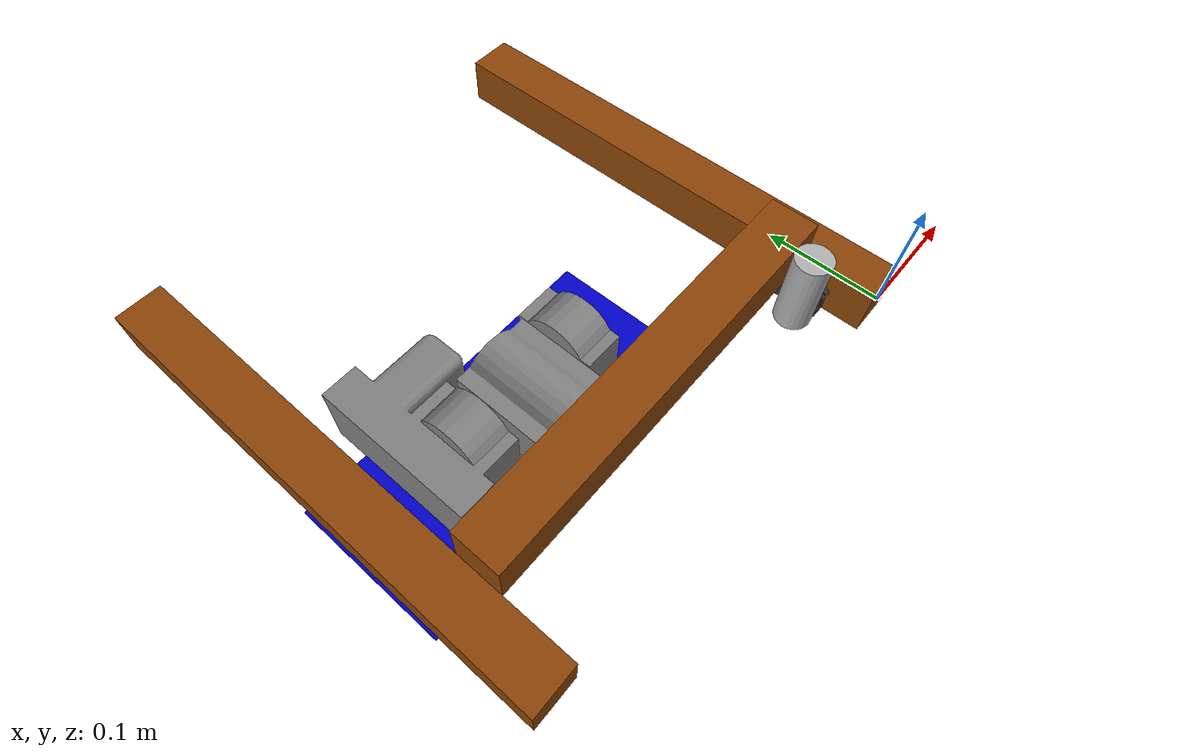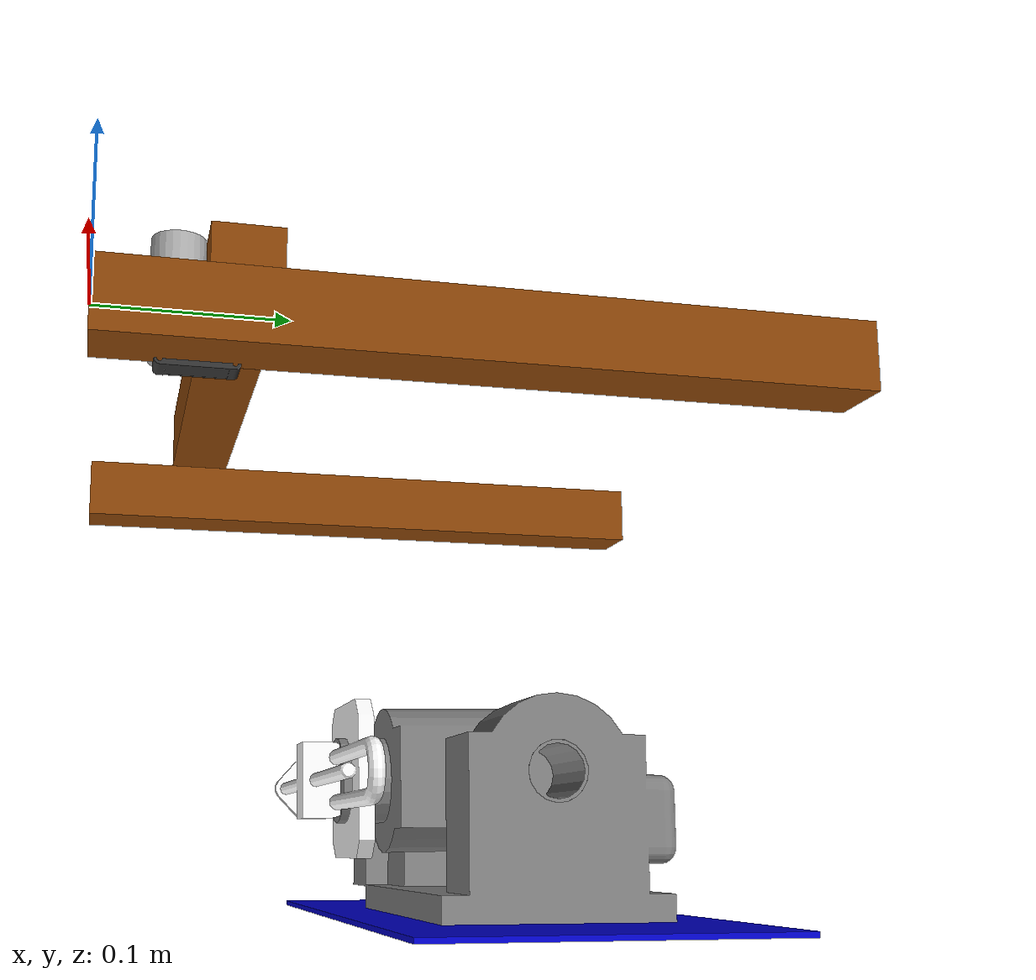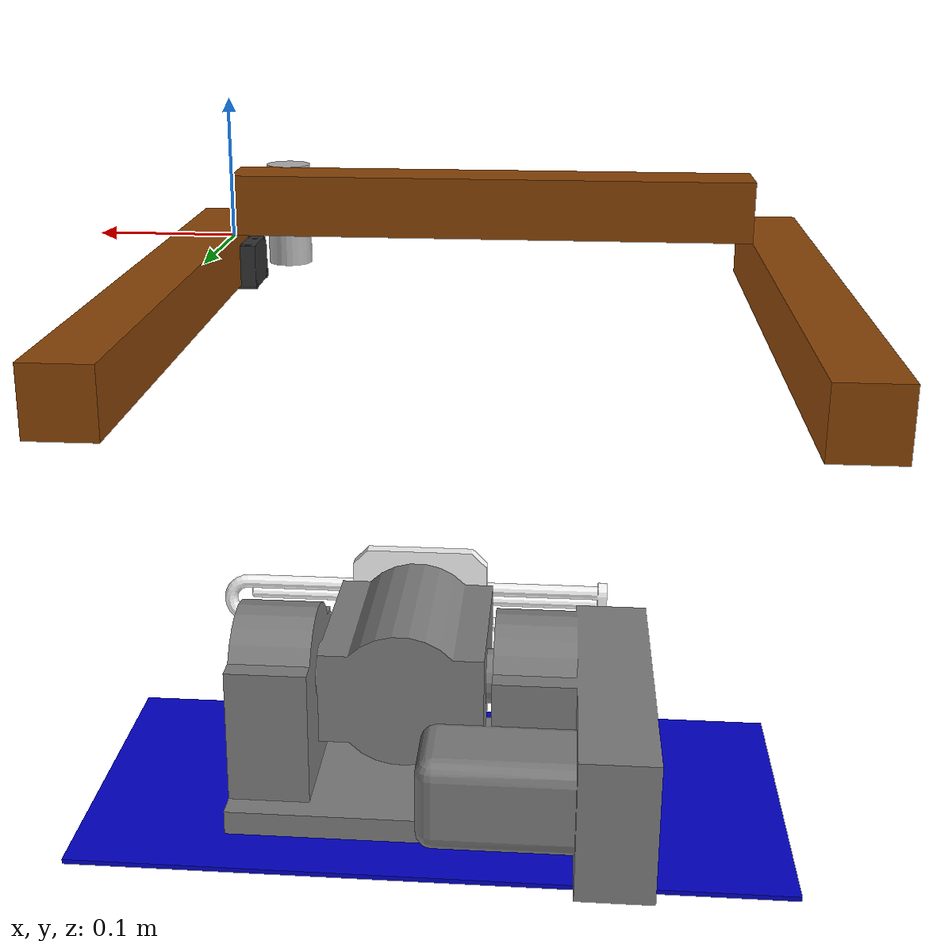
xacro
<?xml version="1.0" ?>

<robot name="laser" xmlns:xacro="http://www.ros.org/wiki/xacro">
    <!-- Modele Parameters (m)-->
    <xacro:property name="base_plate_length" value="0.43"/>
    <xacro:property name="base_plate_width" value="0.20"/>
    <xacro:property name="base_plate_thickness" value="0.003"/>
    <xacro:property name="base_plate_to_rotary_center_height" value="0.080"/>
    <xacro:property name="rotary_center_to_rotary_top" value="0.125"/>
    <xacro:property name="rotary_center_to_laser_head_x" value="0.103"/>
    <xacro:property name="rotary_center_to_laser_head_y" value="0.210"/>
    <xacro:property name="rotary_center_to_laser_head_z" value="0.214"/>

    <xacro:property name="laser_rad" value="0.015"/>
    <xacro:property name="laser_height" value="0.069"/>
    <xacro:property name="rail_width" value="0.04"/>
    <xacro:property name="y_rail_length" value="0.42"/>
    <xacro:property name="x_rail_length" value="0.347"/>
    <xacro:property name="sensor_offset_from_T_x" value="0.027"/>
    <xacro:property name="sensor_offset_from_T_y" value="0.0"/>
    <xacro:property name="sensor_offset_from_T_z" value="0.014"/>

    <!-- Joint Parameters -->
    <xacro:property name="X_limit" value="-0.280"/>
    <xacro:property name="Y_limit" value="-0.280"/>
    <xacro:property name="Z_limit" value="-0.065"/>
    <xacro:property name="A_limit" value="-2.617"/>
    <xacro:property name="X_joint_initial_offset" value="0.03"/>
    <xacro:property name="Y_joint_initial_offset" value="0.08"/>

    <material name="blue">
        <color rgba="0 0 0.8 1"/>
    </material>

    <material name="gray">
        <color rgba="0.50196 0.50196 0.50196 1"/>
    </material>

    <material name="brown">
        <color rgba="0.54902 0.27059 0.02745 1"/>
    </material>

    <material name="white">
        <color rgba="1 1 1 1"/>
    </material>

    <material name="black">
        <color rgba="0.2 0.2 0.2 1"/>
    </material>

    <!-- Rotary Base Frame is at the bottom of ratary platform -->
    <link name="rotary_base">
        <visual>
            <origin rpy="0 0 0" xyz="0 0 0"/>
            <geometry>
                <mesh filename="package://grbl_ros2_gui/meshes/rotary_base_link.STL"/>
            </geometry>
            <material name="gray"/>
        </visual>
    </link>

    <!-- base_link is the Z-table moving up and down -->
    <link name="base_link">
        <visual>
            <!-- origin is at base plate's top center -->
            <origin rpy="0 0 0" xyz="0 0 ${-base_plate_thickness/2}"/>
            <geometry>
                <box size="${base_plate_length} ${base_plate_width} ${base_plate_thickness}"/>
            </geometry>
            <material name="blue"/>
        </visual>
    </link>

    <joint name="rotary_base__base_link" type="fixed">
        <axis xyz="0 0 1" />
        <origin rpy="0 0 0" xyz="-0.020 0 0"/>
        <parent link="rotary_base"/>
        <child link="base_link"/>
    </joint>

    <link name="rotary_middle">
        <visual>
            <origin rpy="0 0 0" xyz="0 0 0"/>
            <geometry>
                <mesh filename="package://grbl_ros2_gui/meshes/rotary_middle_link.STL"/>
            </geometry>
            <material name="gray"/>
        </visual>
    </link>

    <!-- A axis -->
    <joint name="A" type="revolute">
        <axis xyz="1 0 0" />
        <limit effort="1000.0" lower="${A_limit}" upper="0" velocity="1" />
        <origin rpy="1.588 0 0" xyz="0 0 ${base_plate_to_rotary_center_height}"/>
        <parent link="rotary_base"/>
        <child link="rotary_middle"/>
    </joint>

    <!-- rotary_top is the Workpiece Frame (W) -->
    <link name="W">
        <visual>
            <origin rpy="0 0 0" xyz="0 0 0"/>
            <geometry>
                <mesh filename="package://grbl_ros2_gui/meshes/rotary_top_link.STL"/>
            </geometry>
            <material name="white"/>
        </visual>
    </link>

    <!-- B axis -->
    <joint name="B" type="revolute">
        <axis xyz="0 0 1" />
        <limit effort="1000.0" lower="0" upper="0" velocity="1" />
        <origin rpy="0 0 0" xyz="0 0 ${rotary_center_to_rotary_top}"/>
        <parent link="rotary_middle"/>
        <child link="W"/>
    </joint>

    <!-- Linear Stage y_box1 is the global fixed frame -->
    <link name="y_box1">
        <visual>
            <origin rpy="0 0 0" xyz="0 ${y_rail_length/2} 0"/>
            <geometry>
                <box size="${rail_width} ${y_rail_length} ${rail_width}"/>
            </geometry>
            <material name="brown"/>
        </visual>
    </link>

    <!-- Z axis -->
    <joint name="Z" type="prismatic">
        <axis xyz="0 0 1" />
        <limit effort="1000.0" lower="${Z_limit}" upper="0" velocity="1" />
        <origin rpy="0 0 0" xyz="${-rotary_center_to_laser_head_x - X_joint_initial_offset - rail_width/2} ${rotary_center_to_laser_head_y + Y_joint_initial_offset - rail_width/2 - laser_rad} ${-base_plate_to_rotary_center_height - rotary_center_to_laser_head_z - laser_height + 1.5*rail_width}"/>
        <parent link="y_box1"/>
        <child link="rotary_base"/>
    </joint>

    <link name="y_box2">
        <visual>
            <origin rpy="0 0 0" xyz="0 ${y_rail_length/2} 0"/>
            <geometry>
                <box size="${rail_width} ${y_rail_length} ${rail_width}"/>
            </geometry>
            <material name="brown"/>
        </visual>
    </link>

    <joint name="y_box1__y_box2" type="fixed">
        <origin rpy="0 0 0" xyz="${-x_rail_length-rail_width} 0 0"/>
        <parent link="y_box1"/>
        <child link="y_box2"/>
    </joint>

    <link name="x_box">
        <visual>
            <origin rpy="0 0 0" xyz="${-x_rail_length/2} 0 0"/>
            <geometry>
                <box size="${x_rail_length} ${rail_width} ${rail_width}"/>
            </geometry>
            <material name="brown"/>
        </visual>
    </link>

    <!-- Y axis -->
    <joint name="Y" type="prismatic">
        <axis xyz="0 1 0" />
        <limit effort="1000.0" lower="${Y_limit}" upper="0" velocity="1" />
        <origin rpy="0 0 0" xyz="${-rail_width/2} ${Y_joint_initial_offset} ${rail_width}"/>
        <parent link="y_box1"/>
        <child link="x_box"/>
    </joint>

    <!-- Tool Coordinates Frame -->
    <link name="T">
        <visual>
            <origin rpy="0 0 0" xyz="0 0 ${-laser_height/2}"/>
            <geometry>
                <cylinder radius="${laser_rad}" length="${laser_height}"/>
            </geometry>
        </visual>
    </link>

    <!-- X axis -->
    <joint name="X" type="prismatic">
        <axis xyz="1 0 0" />
        <limit effort="1000.0" lower="${X_limit}" upper="0" velocity="1" />
        <origin rpy="3.1415 0 0" xyz="${-X_joint_initial_offset} ${-rail_width/2-laser_rad} ${rail_width/2-laser_height}"/>
        <parent link="x_box"/>
        <child link="T"/>
    </joint>

    <!-- Distance Sensor Frame -->
    <link name="sensor">
        <visual>
            <origin rpy="0 0 0" xyz="0 0 0"/>
            <geometry>
                <mesh filename="package://grbl_ros2_gui/meshes/ODminiDistanceSensor.STL"/>
            </geometry>
            <material name="black"/>
        </visual>
    </link>

    <joint name="T__sensor" type="fixed">
        <axis xyz="1 0 0" />
        <origin rpy="0 -1.57 0" xyz="${sensor_offset_from_T_x} ${sensor_offset_from_T_y} ${sensor_offset_from_T_z}"/>
        <parent link="T"/>
        <child link="sensor"/>
    </joint>
</robot>
